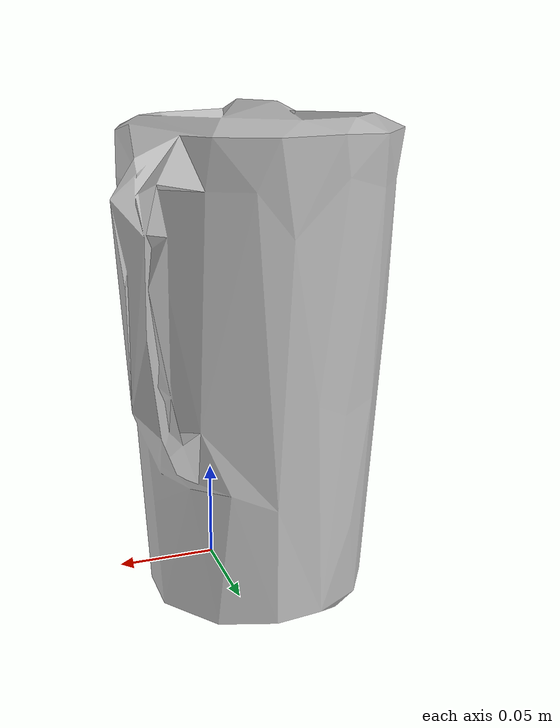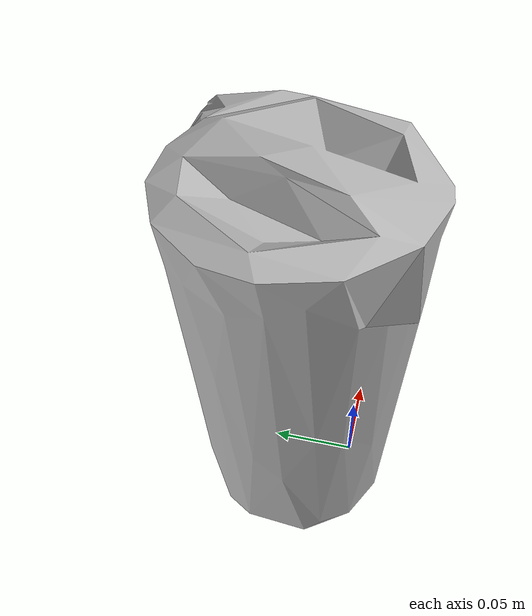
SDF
<?xml version='1.0'?>
<sdf version="1.4">
  <model name="019_pitcher_base">
    <static>false</static>
    <link name="link">
      <inertial>
        <pose>-0.009331750003098353 0.037560764967764004 0.12754329993280555 -3.1128583216002137 0.0050148594490264835 2.325722421822682</pose>
        <mass>0.3124587418776212</mass>
        <inertia>
          <ixx>0.0018176631463092867</ixx>
          <ixy>-4.373371462604125e-20</ixy>
          <ixz>-5.705397213237658e-21</ixz>
          <iyy>0.0016206619800341446</iyy>
          <iyz>-3.143930801813173e-20</iyz>
          <izz>0.0007137188626668247</izz>
        </inertia>
      </inertial>
      <collision name="collision">
        <geometry>
          <mesh>
            <!-- Use a downsampled mesh for collisions -->
            <uri>model:///019_pitcher_base/019_pitcher_base_250_collision.stl</uri>
	        </mesh>
        </geometry>
        <surface>
      </surface>
      </collision>
      <visual name="visual">
        <geometry>
          <mesh>
            <uri>model:///019_pitcher_base/textured.obj</uri>
	        </mesh>
        </geometry>
        <material>
          <script>
            <uri>model:///019_pitcher_base/019_pitcher_base.material</uri>
            <name>019_pitcher_base</name>
          </script>
        </material>
      </visual>
    </link>
  </model>
</sdf>
